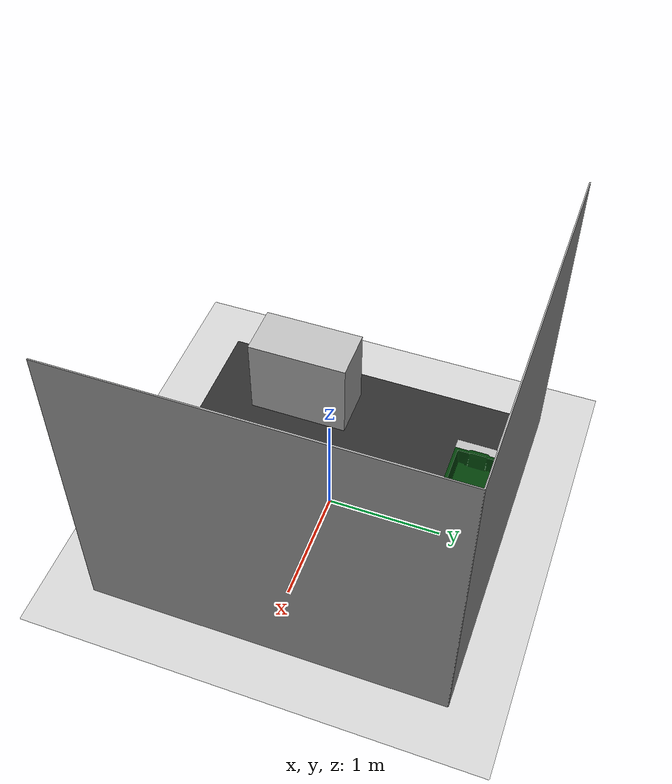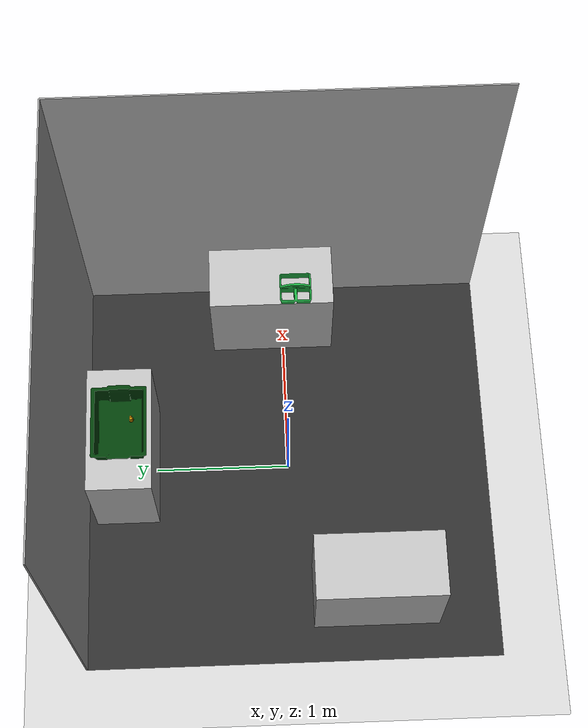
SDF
<sdf version="1.4">
 <world name="default">
  <include><uri>model://ground_plane</uri></include>
  <include>
   <uri>model://fetchit_simple_env</uri>
   <name>fetchit_simple_env1</name>
   <pose>0 0 0.005 0 0 0</pose>
  </include>
  <include>
   <uri>model://caddy_green</uri>
   <name>caddy_green1</name>
   <pose>1.109024 -0.094681 0.814290 0 0 0</pose>
  </include>
  <include>
   <uri>model://gearbox_bolt</uri>
   <name>gearbox_bolt1</name>
   <pose>0.104571 1.127 0.81 0 0 0</pose>
  </include>
  <include>
   <uri>model://gearbox_bolt</uri>
   <name>gearbox_bolt2</name>
   <pose>0.109393 1.127 0.81 0 0 0</pose>
  </include>
  <include>
   <uri>model://fetchit_table</uri>
   <name>screw_bin_pick_station</name>
   <pose>0.04929 1.22163 0.0 0 0 0</pose>
  </include>
  <include>
   <uri>model://fetchit_table</uri>
   <name>kit_station</name>
   <pose>1.23491 0.087 0.0 0 0 -1.57</pose>
  </include>
  <include>
   <uri>model://fetchit_table</uri>
   <name>gearbox_pick_station</name>
   <pose>-1.03 -0.60962 0.0 0 0 1.57</pose>
  </include>
  <include><uri>model://screw_bin</uri><name>screw_bin</name><pose>0.049025 1.2 0.801 0 0 0</pose></include>
  <light name="user_point_light_0" type="point">
   <pose>1.0 1.0 2.0 0 0 0</pose>
   <diffuse>1 1 1 1</diffuse>
   <specular>0.1 0.1 0.1 1</specular>
   <attenuation>
    <range>5</range>
    <constant>0.2</constant>
    <linear>0.01</linear>
    <quadratic>0.001</quadratic>
   </attenuation>
   <cast_shadows>0</cast_shadows>
   <direction>0 0 -1</direction>
  </light>
  <light name="user_point_light_1" type="point">
   <pose>-1.0 1.0 2.0 0 0 0</pose>
   <diffuse>1 1 1 1</diffuse>
   <specular>0.1 0.1 0.1 1</specular>
   <attenuation>
    <range>5</range>
    <constant>0.2</constant>
    <linear>0.01</linear>
    <quadratic>0.001</quadratic>
   </attenuation>
   <cast_shadows>0</cast_shadows>
   <direction>0 0 -1</direction>
  </light>
  <light name="user_point_light_2" type="point">
   <pose>-1.0 -1.0 2.0 0 0 0</pose>
   <diffuse>1 1 1 1</diffuse>
   <specular>0.1 0.1 0.1 1</specular>
   <attenuation>
    <range>5</range>
    <constant>0.2</constant>
    <linear>0.01</linear>
    <quadratic>0.001</quadratic>
   </attenuation>
   <cast_shadows>0</cast_shadows>
   <direction>0 0 -1</direction>
  </light>
  <light name="user_point_light_3" type="point">
   <pose>1.0 -1.0 2.0 0 0 0</pose>
   <diffuse>1 1 1 1</diffuse>
   <specular>0.1 0.1 0.1 1</specular>
   <attenuation>
    <range>5</range>
    <constant>0.2</constant>
    <linear>0.01</linear>
    <quadratic>0.001</quadratic>
   </attenuation>
   <cast_shadows>0</cast_shadows>
   <direction>0 0 -1</direction>
  </light>
 </world>
</sdf>

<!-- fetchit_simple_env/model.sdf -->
<sdf version='1.4'>
  <model name="fetchit_simple_env">
      <static>1</static>
      <link name='link'>
        <visual name='visual'>
          <geometry>
            <mesh>
              <uri>model://fetchit_simple_env/meshes/fetchit_env_barebones_v3.dae</uri>
              <scale>1 1 1</scale>
            </mesh>
          </geometry>
        </visual>
        <velocity_decay>
          <linear>0.000000</linear>
          <angular>0.000000</angular>
        </velocity_decay>
        <self_collide>0</self_collide>
        <kinematic>0</kinematic>
        <gravity>1</gravity>
      </link>
  </model>
</sdf>

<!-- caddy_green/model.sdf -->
<sdf version='1.4'>
  <model name="caddy_green">
      <static>1</static>
      <link name='link'>
        <inertial>
          <mass>0.0680389</mass>
          <inertia>
            <ixx>0.00040636575898</ixx>
            <ixy>0.000000</ixy>
            <ixz>0.000000</ixz>
            <iyy>0.00040636575898</iyy>
            <iyz>0.000000</iyz>
            <izz>0.000625974918075</izz>
          </inertia>
        </inertial>
        <collision name='collision'>
          <geometry>
            <mesh>
              <uri>model://caddy_green/meshes/Romanoff_Small_Utility_Caddy_cof.stl</uri>
              <scale>1 1 1</scale>
            </mesh>
          </geometry>
          <surface>
            <friction>
              <ode>
                <mu>1.0</mu>
                <mu2>1.0</mu2>
              </ode>
            </friction>
          </surface>
        </collision>

        <visual name='visual'>
          <geometry>
            <mesh>
              <uri>model://caddy_green/meshes/Romanoff_Small_Utility_Caddy_cof_green.dae</uri>
              <scale>1 1 1</scale>
            </mesh>
          </geometry>
        </visual>
        <velocity_decay>
          <linear>0.000000</linear>
          <angular>0.000000</angular>
        </velocity_decay>
        <self_collide>0</self_collide>
        <kinematic>0</kinematic>
        <gravity>1</gravity>
      </link>
  </model>
</sdf>

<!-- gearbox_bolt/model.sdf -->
<sdf version='1.4'>
  <model name="gearbox_bolt">
      <static>0</static>
      <link name='link'>
        <inertial>
          <pose>0 0 0.030633 0 0 0</pose>
          <mass>0.0592855</mass>
          <inertia>
            <ixx>2.2977502034e-05</ixx>
            <ixy>0.000000</ixy>
            <ixz>0.000000</ixz>
            <iyy>2.29905352792e-05</iyy>
            <iyz>0.000000</iyz>
            <izz>8.87979175473e-06</izz>
          </inertia>
        </inertial>
        <collision name='collision'>
          <geometry>
            <mesh>
              <uri>model://gearbox_bolt/meshes/gear_bolt_simple.stl</uri>
              <scale>1 1 1</scale>
            </mesh>
          </geometry>
          <surface>
            <friction>
              <ode>
                <mu>30.0</mu>
                <mu2>30.0</mu2>
              </ode>
            </friction>
          </surface>
        </collision>
        <visual name='visual'>
          <geometry>
            <mesh>
              <uri>model://gearbox_bolt/meshes/screw_v1.dae</uri>
              <scale>1 1 1</scale>
            </mesh>
          </geometry>
        </visual>
        <velocity_decay>
          <linear>0.000000</linear>
          <angular>0.000000</angular>
        </velocity_decay>
        <self_collide>0</self_collide>
        <kinematic>0</kinematic>
        <gravity>1</gravity>
      </link>
  </model>
</sdf>

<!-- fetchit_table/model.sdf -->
<sdf version='1.4'>
  <model name="fetchit_table">
      <static>1</static>
      <link name='link'>
        <inertial>
          <mass>0.0592855</mass>
          <inertia>
            <ixx>2.31818050784e-05</ixx>
            <ixy>0.000000</ixy>
            <ixz>0.000000</ixz>
            <iyy>2.31851837098e-05</iyy>
            <iyz>0.000000</iyz>
            <izz>8.88944636856e-06</izz>
          </inertia>
        </inertial>
        <collision name='collision'>
          <geometry>
            <mesh>
              <uri>model://fetchit_table/meshes/simple.dae</uri>
              <scale>1 1 1</scale>
            </mesh>
          </geometry>
          <surface>
            <friction>
              <ode>
                <mu>30.0</mu>
                <mu2>30.0</mu2>
              </ode>
            </friction>
          </surface>
        </collision>
        <visual name='visual'>
          <geometry>
            <mesh>
              <uri>model://fetchit_table/meshes/tablefetchit_v2_materials.dae</uri>
              <scale>1 1 1</scale>
            </mesh>
          </geometry>
        </visual>
        <velocity_decay>
          <linear>0.000000</linear>
          <angular>0.000000</angular>
        </velocity_decay>
        <self_collide>0</self_collide>
        <kinematic>0</kinematic>
        <gravity>1</gravity>
      </link>
  </model>
</sdf>

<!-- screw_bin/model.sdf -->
<sdf version='1.4'>
  <model name="screw_bin">
      <static>0</static>
      <link name='link'>
        <inertial>
          <!-- Weight = 1.7lb -> 0.771107kg-->
          <mass>0.771107</mass>
          <inertia>
            <ixx>0.010364</ixx>
            <ixy>0.000000</ixy>
            <ixz>0.000000</ixz>
            <iyy>0.017619</iyy>
            <iyz>0.000000</iyz>
            <izz>0.025911</izz>
          </inertia>
        </inertial>
        <collision name='collision'>
          <geometry>
            <mesh>
              <uri>model://screw_bin/meshes/screw_bin.stl</uri>
              <scale>1 1 1</scale>
            </mesh>
          </geometry>
          <surface>
            <friction>
              <ode>
                <mu>30.0</mu>
                <mu2>30.0</mu2>
              </ode>
            </friction>
          </surface>
        </collision>
        <visual name='visual'>
          <geometry>
            <mesh>
              <uri>model://screw_bin/meshes/screw_bin.dae</uri>
              <scale>1 1 1</scale>
            </mesh>
          </geometry>
        </visual>
        <velocity_decay>
          <linear>0.000000</linear>
          <angular>0.000000</angular>
        </velocity_decay>
        <self_collide>0</self_collide>
        <kinematic>0</kinematic>
        <gravity>1</gravity>
      </link>
  </model>
</sdf>
